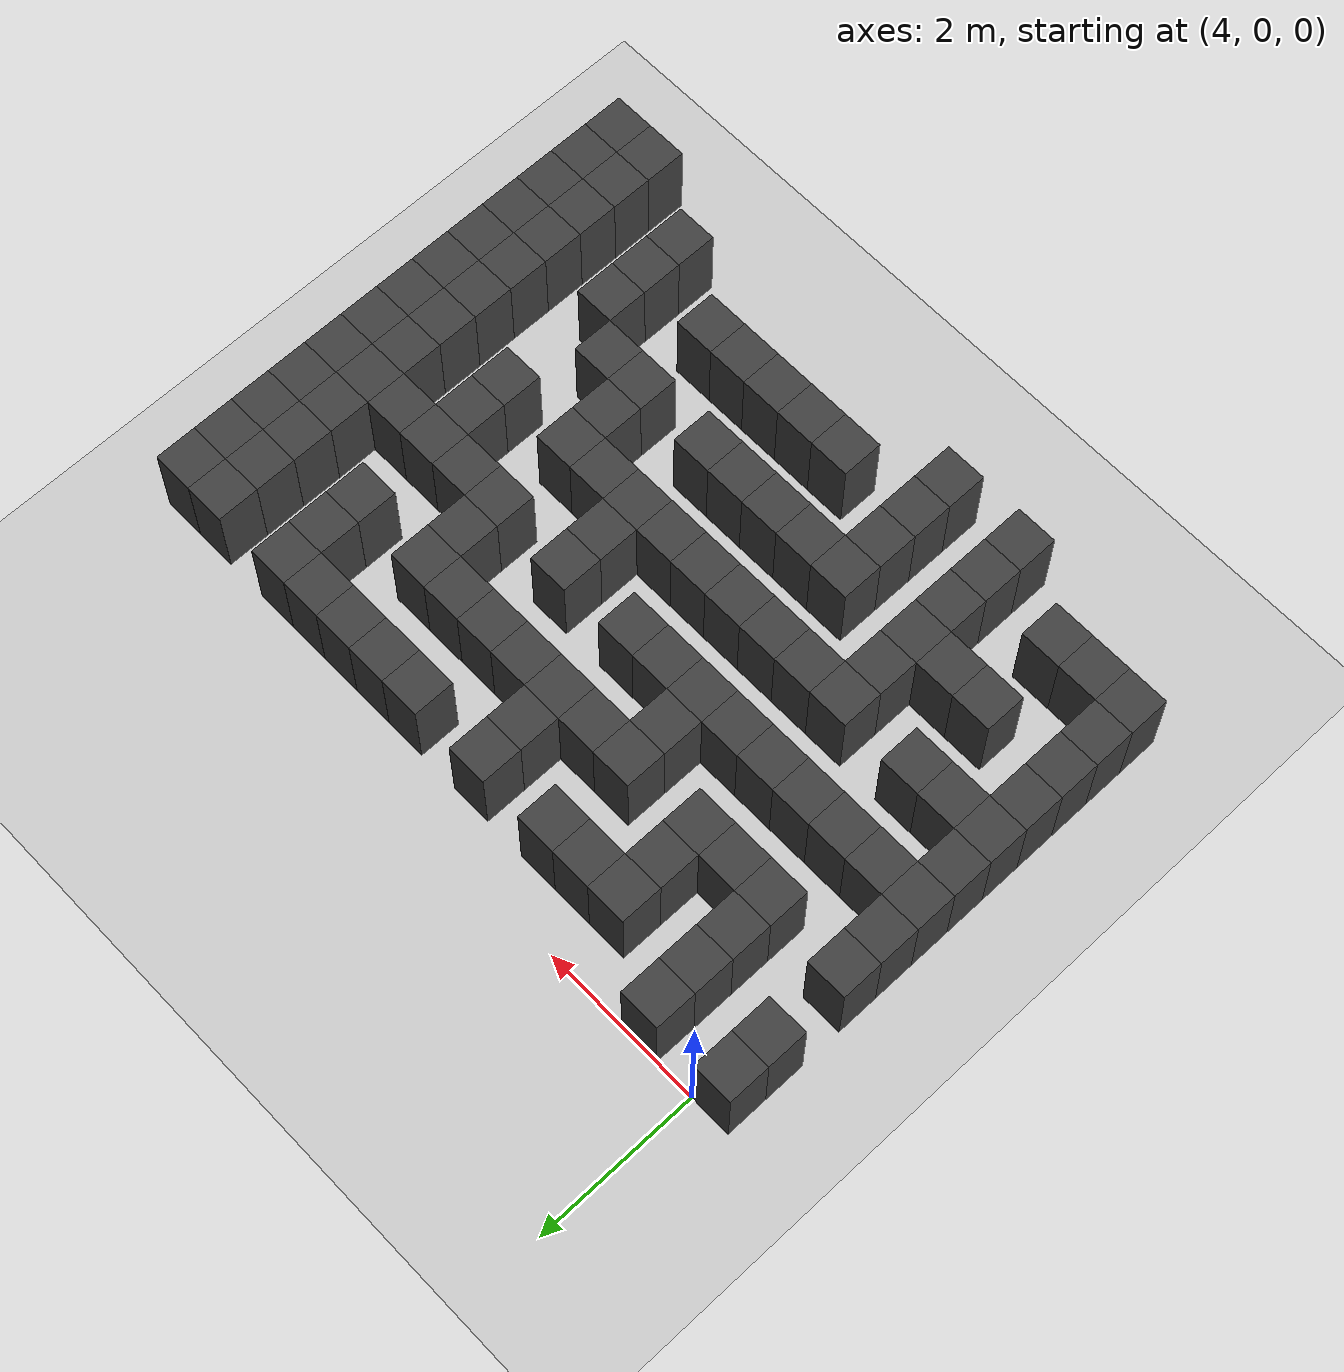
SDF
<sdf version="1.7">
 <world name="map_18914">
  <model name="ground_plane">
   <static>true</static>
   <link name="link">
    <collision name="collision">
     <geometry><plane><normal>0 0 1</normal><size>200 200</size></plane></geometry>
    </collision>
    <visual name="visual">
     <geometry><plane><normal>0 0 1</normal><size>200 200</size></plane></geometry>
     <material><ambient>0.8 0.8 0.8 1</ambient><diffuse>0.8 0.8 0.8 1</diffuse></material>
    </visual>
   </link>
  </model>
  <model name="maze_environment">
   <static>true</static>
   <link name="wall_659">
    <pose>3.750 -0.250 0.500 0 0 0</pose>
    <collision name="col"><geometry><box><size>0.5 0.5 1.0</size></box></geometry></collision>
    <visual name="vis">
     <geometry><box><size>0.5 0.5 1.0</size></box></geometry>
     <material><ambient>0.15 0.15 0.15 1</ambient><diffuse>0.25 0.25 0.25 1</diffuse></material>
    </visual>
   </link>
   <link name="wall_660">
    <pose>4.750 -0.250 0.500 0 0 0</pose>
    <collision name="col"><geometry><box><size>0.5 0.5 1.0</size></box></geometry></collision>
    <visual name="vis">
     <geometry><box><size>0.5 0.5 1.0</size></box></geometry>
     <material><ambient>0.15 0.15 0.15 1</ambient><diffuse>0.25 0.25 0.25 1</diffuse></material>
    </visual>
   </link>
   <link name="wall_690">
    <pose>3.750 -0.750 0.500 0 0 0</pose>
    <collision name="col"><geometry><box><size>0.5 0.5 1.0</size></box></geometry></collision>
    <visual name="vis">
     <geometry><box><size>0.5 0.5 1.0</size></box></geometry>
     <material><ambient>0.15 0.15 0.15 1</ambient><diffuse>0.25 0.25 0.25 1</diffuse></material>
    </visual>
   </link>
   <link name="wall_691">
    <pose>4.750 -0.750 0.500 0 0 0</pose>
    <collision name="col"><geometry><box><size>0.5 0.5 1.0</size></box></geometry></collision>
    <visual name="vis">
     <geometry><box><size>0.5 0.5 1.0</size></box></geometry>
     <material><ambient>0.15 0.15 0.15 1</ambient><diffuse>0.25 0.25 0.25 1</diffuse></material>
    </visual>
   </link>
   <link name="wall_692">
    <pose>5.750 -0.750 0.500 0 0 0</pose>
    <collision name="col"><geometry><box><size>0.5 0.5 1.0</size></box></geometry></collision>
    <visual name="vis">
     <geometry><box><size>0.5 0.5 1.0</size></box></geometry>
     <material><ambient>0.15 0.15 0.15 1</ambient><diffuse>0.25 0.25 0.25 1</diffuse></material>
    </visual>
   </link>
   <link name="wall_693">
    <pose>6.250 -0.750 0.500 0 0 0</pose>
    <collision name="col"><geometry><box><size>0.5 0.5 1.0</size></box></geometry></collision>
    <visual name="vis">
     <geometry><box><size>0.5 0.5 1.0</size></box></geometry>
     <material><ambient>0.15 0.15 0.15 1</ambient><diffuse>0.25 0.25 0.25 1</diffuse></material>
    </visual>
   </link>
   <link name="wall_694">
    <pose>6.750 -0.750 0.500 0 0 0</pose>
    <collision name="col"><geometry><box><size>0.5 0.5 1.0</size></box></geometry></collision>
    <visual name="vis">
     <geometry><box><size>0.5 0.5 1.0</size></box></geometry>
     <material><ambient>0.15 0.15 0.15 1</ambient><diffuse>0.25 0.25 0.25 1</diffuse></material>
    </visual>
   </link>
   <link name="wall_695">
    <pose>7.750 -0.750 0.500 0 0 0</pose>
    <collision name="col"><geometry><box><size>0.5 0.5 1.0</size></box></geometry></collision>
    <visual name="vis">
     <geometry><box><size>0.5 0.5 1.0</size></box></geometry>
     <material><ambient>0.15 0.15 0.15 1</ambient><diffuse>0.25 0.25 0.25 1</diffuse></material>
    </visual>
   </link>
   <link name="wall_696">
    <pose>8.750 -0.750 0.500 0 0 0</pose>
    <collision name="col"><geometry><box><size>0.5 0.5 1.0</size></box></geometry></collision>
    <visual name="vis">
     <geometry><box><size>0.5 0.5 1.0</size></box></geometry>
     <material><ambient>0.15 0.15 0.15 1</ambient><diffuse>0.25 0.25 0.25 1</diffuse></material>
    </visual>
   </link>
   <link name="wall_697">
    <pose>9.250 -0.750 0.500 0 0 0</pose>
    <collision name="col"><geometry><box><size>0.5 0.5 1.0</size></box></geometry></collision>
    <visual name="vis">
     <geometry><box><size>0.5 0.5 1.0</size></box></geometry>
     <material><ambient>0.15 0.15 0.15 1</ambient><diffuse>0.25 0.25 0.25 1</diffuse></material>
    </visual>
   </link>
   <link name="wall_698">
    <pose>9.750 -0.750 0.500 0 0 0</pose>
    <collision name="col"><geometry><box><size>0.5 0.5 1.0</size></box></geometry></collision>
    <visual name="vis">
     <geometry><box><size>0.5 0.5 1.0</size></box></geometry>
     <material><ambient>0.15 0.15 0.15 1</ambient><diffuse>0.25 0.25 0.25 1</diffuse></material>
    </visual>
   </link>
   <link name="wall_699">
    <pose>10.250 -0.750 0.500 0 0 0</pose>
    <collision name="col"><geometry><box><size>0.5 0.5 1.0</size></box></geometry></collision>
    <visual name="vis">
     <geometry><box><size>0.5 0.5 1.0</size></box></geometry>
     <material><ambient>0.15 0.15 0.15 1</ambient><diffuse>0.25 0.25 0.25 1</diffuse></material>
    </visual>
   </link>
   <link name="wall_700">
    <pose>10.750 -0.750 0.500 0 0 0</pose>
    <collision name="col"><geometry><box><size>0.5 0.5 1.0</size></box></geometry></collision>
    <visual name="vis">
     <geometry><box><size>0.5 0.5 1.0</size></box></geometry>
     <material><ambient>0.15 0.15 0.15 1</ambient><diffuse>0.25 0.25 0.25 1</diffuse></material>
    </visual>
   </link>
   <link name="wall_701">
    <pose>11.750 -0.750 0.500 0 0 0</pose>
    <collision name="col"><geometry><box><size>0.5 0.5 1.0</size></box></geometry></collision>
    <visual name="vis">
     <geometry><box><size>0.5 0.5 1.0</size></box></geometry>
     <material><ambient>0.15 0.15 0.15 1</ambient><diffuse>0.25 0.25 0.25 1</diffuse></material>
    </visual>
   </link>
   <link name="wall_702">
    <pose>12.250 -0.750 0.500 0 0 0</pose>
    <collision name="col"><geometry><box><size>0.5 0.5 1.0</size></box></geometry></collision>
    <visual name="vis">
     <geometry><box><size>0.5 0.5 1.0</size></box></geometry>
     <material><ambient>0.15 0.15 0.15 1</ambient><diffuse>0.25 0.25 0.25 1</diffuse></material>
    </visual>
   </link>
   <link name="wall_710">
    <pose>4.750 -1.250 0.500 0 0 0</pose>
    <collision name="col"><geometry><box><size>0.5 0.5 1.0</size></box></geometry></collision>
    <visual name="vis">
     <geometry><box><size>0.5 0.5 1.0</size></box></geometry>
     <material><ambient>0.15 0.15 0.15 1</ambient><diffuse>0.25 0.25 0.25 1</diffuse></material>
    </visual>
   </link>
   <link name="wall_711">
    <pose>5.750 -1.250 0.500 0 0 0</pose>
    <collision name="col"><geometry><box><size>0.5 0.5 1.0</size></box></geometry></collision>
    <visual name="vis">
     <geometry><box><size>0.5 0.5 1.0</size></box></geometry>
     <material><ambient>0.15 0.15 0.15 1</ambient><diffuse>0.25 0.25 0.25 1</diffuse></material>
    </visual>
   </link>
   <link name="wall_712">
    <pose>7.750 -1.250 0.500 0 0 0</pose>
    <collision name="col"><geometry><box><size>0.5 0.5 1.0</size></box></geometry></collision>
    <visual name="vis">
     <geometry><box><size>0.5 0.5 1.0</size></box></geometry>
     <material><ambient>0.15 0.15 0.15 1</ambient><diffuse>0.25 0.25 0.25 1</diffuse></material>
    </visual>
   </link>
   <link name="wall_713">
    <pose>10.750 -1.250 0.500 0 0 0</pose>
    <collision name="col"><geometry><box><size>0.5 0.5 1.0</size></box></geometry></collision>
    <visual name="vis">
     <geometry><box><size>0.5 0.5 1.0</size></box></geometry>
     <material><ambient>0.15 0.15 0.15 1</ambient><diffuse>0.25 0.25 0.25 1</diffuse></material>
    </visual>
   </link>
   <link name="wall_714">
    <pose>11.750 -1.250 0.500 0 0 0</pose>
    <collision name="col"><geometry><box><size>0.5 0.5 1.0</size></box></geometry></collision>
    <visual name="vis">
     <geometry><box><size>0.5 0.5 1.0</size></box></geometry>
     <material><ambient>0.15 0.15 0.15 1</ambient><diffuse>0.25 0.25 0.25 1</diffuse></material>
    </visual>
   </link>
   <link name="wall_715">
    <pose>12.250 -1.250 0.500 0 0 0</pose>
    <collision name="col"><geometry><box><size>0.5 0.5 1.0</size></box></geometry></collision>
    <visual name="vis">
     <geometry><box><size>0.5 0.5 1.0</size></box></geometry>
     <material><ambient>0.15 0.15 0.15 1</ambient><diffuse>0.25 0.25 0.25 1</diffuse></material>
    </visual>
   </link>
   <link name="wall_739">
    <pose>3.750 -1.750 0.500 0 0 0</pose>
    <collision name="col"><geometry><box><size>0.5 0.5 1.0</size></box></geometry></collision>
    <visual name="vis">
     <geometry><box><size>0.5 0.5 1.0</size></box></geometry>
     <material><ambient>0.15 0.15 0.15 1</ambient><diffuse>0.25 0.25 0.25 1</diffuse></material>
    </visual>
   </link>
   <link name="wall_740">
    <pose>4.750 -1.750 0.500 0 0 0</pose>
    <collision name="col"><geometry><box><size>0.5 0.5 1.0</size></box></geometry></collision>
    <visual name="vis">
     <geometry><box><size>0.5 0.5 1.0</size></box></geometry>
     <material><ambient>0.15 0.15 0.15 1</ambient><diffuse>0.25 0.25 0.25 1</diffuse></material>
    </visual>
   </link>
   <link name="wall_741">
    <pose>5.250 -1.750 0.500 0 0 0</pose>
    <collision name="col"><geometry><box><size>0.5 0.5 1.0</size></box></geometry></collision>
    <visual name="vis">
     <geometry><box><size>0.5 0.5 1.0</size></box></geometry>
     <material><ambient>0.15 0.15 0.15 1</ambient><diffuse>0.25 0.25 0.25 1</diffuse></material>
    </visual>
   </link>
   <link name="wall_742">
    <pose>5.750 -1.750 0.500 0 0 0</pose>
    <collision name="col"><geometry><box><size>0.5 0.5 1.0</size></box></geometry></collision>
    <visual name="vis">
     <geometry><box><size>0.5 0.5 1.0</size></box></geometry>
     <material><ambient>0.15 0.15 0.15 1</ambient><diffuse>0.25 0.25 0.25 1</diffuse></material>
    </visual>
   </link>
   <link name="wall_743">
    <pose>6.750 -1.750 0.500 0 0 0</pose>
    <collision name="col"><geometry><box><size>0.5 0.5 1.0</size></box></geometry></collision>
    <visual name="vis">
     <geometry><box><size>0.5 0.5 1.0</size></box></geometry>
     <material><ambient>0.15 0.15 0.15 1</ambient><diffuse>0.25 0.25 0.25 1</diffuse></material>
    </visual>
   </link>
   <link name="wall_744">
    <pose>7.250 -1.750 0.500 0 0 0</pose>
    <collision name="col"><geometry><box><size>0.5 0.5 1.0</size></box></geometry></collision>
    <visual name="vis">
     <geometry><box><size>0.5 0.5 1.0</size></box></geometry>
     <material><ambient>0.15 0.15 0.15 1</ambient><diffuse>0.25 0.25 0.25 1</diffuse></material>
    </visual>
   </link>
   <link name="wall_745">
    <pose>7.750 -1.750 0.500 0 0 0</pose>
    <collision name="col"><geometry><box><size>0.5 0.5 1.0</size></box></geometry></collision>
    <visual name="vis">
     <geometry><box><size>0.5 0.5 1.0</size></box></geometry>
     <material><ambient>0.15 0.15 0.15 1</ambient><diffuse>0.25 0.25 0.25 1</diffuse></material>
    </visual>
   </link>
   <link name="wall_746">
    <pose>8.250 -1.750 0.500 0 0 0</pose>
    <collision name="col"><geometry><box><size>0.5 0.5 1.0</size></box></geometry></collision>
    <visual name="vis">
     <geometry><box><size>0.5 0.5 1.0</size></box></geometry>
     <material><ambient>0.15 0.15 0.15 1</ambient><diffuse>0.25 0.25 0.25 1</diffuse></material>
    </visual>
   </link>
   <link name="wall_747">
    <pose>8.750 -1.750 0.500 0 0 0</pose>
    <collision name="col"><geometry><box><size>0.5 0.5 1.0</size></box></geometry></collision>
    <visual name="vis">
     <geometry><box><size>0.5 0.5 1.0</size></box></geometry>
     <material><ambient>0.15 0.15 0.15 1</ambient><diffuse>0.25 0.25 0.25 1</diffuse></material>
    </visual>
   </link>
   <link name="wall_748">
    <pose>9.250 -1.750 0.500 0 0 0</pose>
    <collision name="col"><geometry><box><size>0.5 0.5 1.0</size></box></geometry></collision>
    <visual name="vis">
     <geometry><box><size>0.5 0.5 1.0</size></box></geometry>
     <material><ambient>0.15 0.15 0.15 1</ambient><diffuse>0.25 0.25 0.25 1</diffuse></material>
    </visual>
   </link>
   <link name="wall_749">
    <pose>9.750 -1.750 0.500 0 0 0</pose>
    <collision name="col"><geometry><box><size>0.5 0.5 1.0</size></box></geometry></collision>
    <visual name="vis">
     <geometry><box><size>0.5 0.5 1.0</size></box></geometry>
     <material><ambient>0.15 0.15 0.15 1</ambient><diffuse>0.25 0.25 0.25 1</diffuse></material>
    </visual>
   </link>
   <link name="wall_750">
    <pose>10.750 -1.750 0.500 0 0 0</pose>
    <collision name="col"><geometry><box><size>0.5 0.5 1.0</size></box></geometry></collision>
    <visual name="vis">
     <geometry><box><size>0.5 0.5 1.0</size></box></geometry>
     <material><ambient>0.15 0.15 0.15 1</ambient><diffuse>0.25 0.25 0.25 1</diffuse></material>
    </visual>
   </link>
   <link name="wall_751">
    <pose>11.750 -1.750 0.500 0 0 0</pose>
    <collision name="col"><geometry><box><size>0.5 0.5 1.0</size></box></geometry></collision>
    <visual name="vis">
     <geometry><box><size>0.5 0.5 1.0</size></box></geometry>
     <material><ambient>0.15 0.15 0.15 1</ambient><diffuse>0.25 0.25 0.25 1</diffuse></material>
    </visual>
   </link>
   <link name="wall_752">
    <pose>12.250 -1.750 0.500 0 0 0</pose>
    <collision name="col"><geometry><box><size>0.5 0.5 1.0</size></box></geometry></collision>
    <visual name="vis">
     <geometry><box><size>0.5 0.5 1.0</size></box></geometry>
     <material><ambient>0.15 0.15 0.15 1</ambient><diffuse>0.25 0.25 0.25 1</diffuse></material>
    </visual>
   </link>
   <link name="wall_762">
    <pose>3.750 -2.250 0.500 0 0 0</pose>
    <collision name="col"><geometry><box><size>0.5 0.5 1.0</size></box></geometry></collision>
    <visual name="vis">
     <geometry><box><size>0.5 0.5 1.0</size></box></geometry>
     <material><ambient>0.15 0.15 0.15 1</ambient><diffuse>0.25 0.25 0.25 1</diffuse></material>
    </visual>
   </link>
   <link name="wall_763">
    <pose>6.750 -2.250 0.500 0 0 0</pose>
    <collision name="col"><geometry><box><size>0.5 0.5 1.0</size></box></geometry></collision>
    <visual name="vis">
     <geometry><box><size>0.5 0.5 1.0</size></box></geometry>
     <material><ambient>0.15 0.15 0.15 1</ambient><diffuse>0.25 0.25 0.25 1</diffuse></material>
    </visual>
   </link>
   <link name="wall_764">
    <pose>9.750 -2.250 0.500 0 0 0</pose>
    <collision name="col"><geometry><box><size>0.5 0.5 1.0</size></box></geometry></collision>
    <visual name="vis">
     <geometry><box><size>0.5 0.5 1.0</size></box></geometry>
     <material><ambient>0.15 0.15 0.15 1</ambient><diffuse>0.25 0.25 0.25 1</diffuse></material>
    </visual>
   </link>
   <link name="wall_765">
    <pose>11.750 -2.250 0.500 0 0 0</pose>
    <collision name="col"><geometry><box><size>0.5 0.5 1.0</size></box></geometry></collision>
    <visual name="vis">
     <geometry><box><size>0.5 0.5 1.0</size></box></geometry>
     <material><ambient>0.15 0.15 0.15 1</ambient><diffuse>0.25 0.25 0.25 1</diffuse></material>
    </visual>
   </link>
   <link name="wall_766">
    <pose>12.250 -2.250 0.500 0 0 0</pose>
    <collision name="col"><geometry><box><size>0.5 0.5 1.0</size></box></geometry></collision>
    <visual name="vis">
     <geometry><box><size>0.5 0.5 1.0</size></box></geometry>
     <material><ambient>0.15 0.15 0.15 1</ambient><diffuse>0.25 0.25 0.25 1</diffuse></material>
    </visual>
   </link>
   <link name="wall_789">
    <pose>3.750 -2.750 0.500 0 0 0</pose>
    <collision name="col"><geometry><box><size>0.5 0.5 1.0</size></box></geometry></collision>
    <visual name="vis">
     <geometry><box><size>0.5 0.5 1.0</size></box></geometry>
     <material><ambient>0.15 0.15 0.15 1</ambient><diffuse>0.25 0.25 0.25 1</diffuse></material>
    </visual>
   </link>
   <link name="wall_790">
    <pose>4.250 -2.750 0.500 0 0 0</pose>
    <collision name="col"><geometry><box><size>0.5 0.5 1.0</size></box></geometry></collision>
    <visual name="vis">
     <geometry><box><size>0.5 0.5 1.0</size></box></geometry>
     <material><ambient>0.15 0.15 0.15 1</ambient><diffuse>0.25 0.25 0.25 1</diffuse></material>
    </visual>
   </link>
   <link name="wall_791">
    <pose>4.750 -2.750 0.500 0 0 0</pose>
    <collision name="col"><geometry><box><size>0.5 0.5 1.0</size></box></geometry></collision>
    <visual name="vis">
     <geometry><box><size>0.5 0.5 1.0</size></box></geometry>
     <material><ambient>0.15 0.15 0.15 1</ambient><diffuse>0.25 0.25 0.25 1</diffuse></material>
    </visual>
   </link>
   <link name="wall_792">
    <pose>5.250 -2.750 0.500 0 0 0</pose>
    <collision name="col"><geometry><box><size>0.5 0.5 1.0</size></box></geometry></collision>
    <visual name="vis">
     <geometry><box><size>0.5 0.5 1.0</size></box></geometry>
     <material><ambient>0.15 0.15 0.15 1</ambient><diffuse>0.25 0.25 0.25 1</diffuse></material>
    </visual>
   </link>
   <link name="wall_793">
    <pose>5.750 -2.750 0.500 0 0 0</pose>
    <collision name="col"><geometry><box><size>0.5 0.5 1.0</size></box></geometry></collision>
    <visual name="vis">
     <geometry><box><size>0.5 0.5 1.0</size></box></geometry>
     <material><ambient>0.15 0.15 0.15 1</ambient><diffuse>0.25 0.25 0.25 1</diffuse></material>
    </visual>
   </link>
   <link name="wall_794">
    <pose>6.250 -2.750 0.500 0 0 0</pose>
    <collision name="col"><geometry><box><size>0.5 0.5 1.0</size></box></geometry></collision>
    <visual name="vis">
     <geometry><box><size>0.5 0.5 1.0</size></box></geometry>
     <material><ambient>0.15 0.15 0.15 1</ambient><diffuse>0.25 0.25 0.25 1</diffuse></material>
    </visual>
   </link>
   <link name="wall_795">
    <pose>6.750 -2.750 0.500 0 0 0</pose>
    <collision name="col"><geometry><box><size>0.5 0.5 1.0</size></box></geometry></collision>
    <visual name="vis">
     <geometry><box><size>0.5 0.5 1.0</size></box></geometry>
     <material><ambient>0.15 0.15 0.15 1</ambient><diffuse>0.25 0.25 0.25 1</diffuse></material>
    </visual>
   </link>
   <link name="wall_796">
    <pose>7.250 -2.750 0.500 0 0 0</pose>
    <collision name="col"><geometry><box><size>0.5 0.5 1.0</size></box></geometry></collision>
    <visual name="vis">
     <geometry><box><size>0.5 0.5 1.0</size></box></geometry>
     <material><ambient>0.15 0.15 0.15 1</ambient><diffuse>0.25 0.25 0.25 1</diffuse></material>
    </visual>
   </link>
   <link name="wall_797">
    <pose>7.750 -2.750 0.500 0 0 0</pose>
    <collision name="col"><geometry><box><size>0.5 0.5 1.0</size></box></geometry></collision>
    <visual name="vis">
     <geometry><box><size>0.5 0.5 1.0</size></box></geometry>
     <material><ambient>0.15 0.15 0.15 1</ambient><diffuse>0.25 0.25 0.25 1</diffuse></material>
    </visual>
   </link>
   <link name="wall_798">
    <pose>8.750 -2.750 0.500 0 0 0</pose>
    <collision name="col"><geometry><box><size>0.5 0.5 1.0</size></box></geometry></collision>
    <visual name="vis">
     <geometry><box><size>0.5 0.5 1.0</size></box></geometry>
     <material><ambient>0.15 0.15 0.15 1</ambient><diffuse>0.25 0.25 0.25 1</diffuse></material>
    </visual>
   </link>
   <link name="wall_799">
    <pose>9.750 -2.750 0.500 0 0 0</pose>
    <collision name="col"><geometry><box><size>0.5 0.5 1.0</size></box></geometry></collision>
    <visual name="vis">
     <geometry><box><size>0.5 0.5 1.0</size></box></geometry>
     <material><ambient>0.15 0.15 0.15 1</ambient><diffuse>0.25 0.25 0.25 1</diffuse></material>
    </visual>
   </link>
   <link name="wall_800">
    <pose>10.250 -2.750 0.500 0 0 0</pose>
    <collision name="col"><geometry><box><size>0.5 0.5 1.0</size></box></geometry></collision>
    <visual name="vis">
     <geometry><box><size>0.5 0.5 1.0</size></box></geometry>
     <material><ambient>0.15 0.15 0.15 1</ambient><diffuse>0.25 0.25 0.25 1</diffuse></material>
    </visual>
   </link>
   <link name="wall_801">
    <pose>10.750 -2.750 0.500 0 0 0</pose>
    <collision name="col"><geometry><box><size>0.5 0.5 1.0</size></box></geometry></collision>
    <visual name="vis">
     <geometry><box><size>0.5 0.5 1.0</size></box></geometry>
     <material><ambient>0.15 0.15 0.15 1</ambient><diffuse>0.25 0.25 0.25 1</diffuse></material>
    </visual>
   </link>
   <link name="wall_802">
    <pose>11.250 -2.750 0.500 0 0 0</pose>
    <collision name="col"><geometry><box><size>0.5 0.5 1.0</size></box></geometry></collision>
    <visual name="vis">
     <geometry><box><size>0.5 0.5 1.0</size></box></geometry>
     <material><ambient>0.15 0.15 0.15 1</ambient><diffuse>0.25 0.25 0.25 1</diffuse></material>
    </visual>
   </link>
   <link name="wall_803">
    <pose>11.750 -2.750 0.500 0 0 0</pose>
    <collision name="col"><geometry><box><size>0.5 0.5 1.0</size></box></geometry></collision>
    <visual name="vis">
     <geometry><box><size>0.5 0.5 1.0</size></box></geometry>
     <material><ambient>0.15 0.15 0.15 1</ambient><diffuse>0.25 0.25 0.25 1</diffuse></material>
    </visual>
   </link>
   <link name="wall_804">
    <pose>12.250 -2.750 0.500 0 0 0</pose>
    <collision name="col"><geometry><box><size>0.5 0.5 1.0</size></box></geometry></collision>
    <visual name="vis">
     <geometry><box><size>0.5 0.5 1.0</size></box></geometry>
     <material><ambient>0.15 0.15 0.15 1</ambient><diffuse>0.25 0.25 0.25 1</diffuse></material>
    </visual>
   </link>
   <link name="wall_814">
    <pose>3.750 -3.250 0.500 0 0 0</pose>
    <collision name="col"><geometry><box><size>0.5 0.5 1.0</size></box></geometry></collision>
    <visual name="vis">
     <geometry><box><size>0.5 0.5 1.0</size></box></geometry>
     <material><ambient>0.15 0.15 0.15 1</ambient><diffuse>0.25 0.25 0.25 1</diffuse></material>
    </visual>
   </link>
   <link name="wall_815">
    <pose>8.750 -3.250 0.500 0 0 0</pose>
    <collision name="col"><geometry><box><size>0.5 0.5 1.0</size></box></geometry></collision>
    <visual name="vis">
     <geometry><box><size>0.5 0.5 1.0</size></box></geometry>
     <material><ambient>0.15 0.15 0.15 1</ambient><diffuse>0.25 0.25 0.25 1</diffuse></material>
    </visual>
   </link>
   <link name="wall_816">
    <pose>10.750 -3.250 0.500 0 0 0</pose>
    <collision name="col"><geometry><box><size>0.5 0.5 1.0</size></box></geometry></collision>
    <visual name="vis">
     <geometry><box><size>0.5 0.5 1.0</size></box></geometry>
     <material><ambient>0.15 0.15 0.15 1</ambient><diffuse>0.25 0.25 0.25 1</diffuse></material>
    </visual>
   </link>
   <link name="wall_817">
    <pose>11.750 -3.250 0.500 0 0 0</pose>
    <collision name="col"><geometry><box><size>0.5 0.5 1.0</size></box></geometry></collision>
    <visual name="vis">
     <geometry><box><size>0.5 0.5 1.0</size></box></geometry>
     <material><ambient>0.15 0.15 0.15 1</ambient><diffuse>0.25 0.25 0.25 1</diffuse></material>
    </visual>
   </link>
   <link name="wall_818">
    <pose>12.250 -3.250 0.500 0 0 0</pose>
    <collision name="col"><geometry><box><size>0.5 0.5 1.0</size></box></geometry></collision>
    <visual name="vis">
     <geometry><box><size>0.5 0.5 1.0</size></box></geometry>
     <material><ambient>0.15 0.15 0.15 1</ambient><diffuse>0.25 0.25 0.25 1</diffuse></material>
    </visual>
   </link>
   <link name="wall_841">
    <pose>3.750 -3.750 0.500 0 0 0</pose>
    <collision name="col"><geometry><box><size>0.5 0.5 1.0</size></box></geometry></collision>
    <visual name="vis">
     <geometry><box><size>0.5 0.5 1.0</size></box></geometry>
     <material><ambient>0.15 0.15 0.15 1</ambient><diffuse>0.25 0.25 0.25 1</diffuse></material>
    </visual>
   </link>
   <link name="wall_842">
    <pose>4.250 -3.750 0.500 0 0 0</pose>
    <collision name="col"><geometry><box><size>0.5 0.5 1.0</size></box></geometry></collision>
    <visual name="vis">
     <geometry><box><size>0.5 0.5 1.0</size></box></geometry>
     <material><ambient>0.15 0.15 0.15 1</ambient><diffuse>0.25 0.25 0.25 1</diffuse></material>
    </visual>
   </link>
   <link name="wall_843">
    <pose>4.750 -3.750 0.500 0 0 0</pose>
    <collision name="col"><geometry><box><size>0.5 0.5 1.0</size></box></geometry></collision>
    <visual name="vis">
     <geometry><box><size>0.5 0.5 1.0</size></box></geometry>
     <material><ambient>0.15 0.15 0.15 1</ambient><diffuse>0.25 0.25 0.25 1</diffuse></material>
    </visual>
   </link>
   <link name="wall_844">
    <pose>5.750 -3.750 0.500 0 0 0</pose>
    <collision name="col"><geometry><box><size>0.5 0.5 1.0</size></box></geometry></collision>
    <visual name="vis">
     <geometry><box><size>0.5 0.5 1.0</size></box></geometry>
     <material><ambient>0.15 0.15 0.15 1</ambient><diffuse>0.25 0.25 0.25 1</diffuse></material>
    </visual>
   </link>
   <link name="wall_845">
    <pose>6.250 -3.750 0.500 0 0 0</pose>
    <collision name="col"><geometry><box><size>0.5 0.5 1.0</size></box></geometry></collision>
    <visual name="vis">
     <geometry><box><size>0.5 0.5 1.0</size></box></geometry>
     <material><ambient>0.15 0.15 0.15 1</ambient><diffuse>0.25 0.25 0.25 1</diffuse></material>
    </visual>
   </link>
   <link name="wall_846">
    <pose>6.750 -3.750 0.500 0 0 0</pose>
    <collision name="col"><geometry><box><size>0.5 0.5 1.0</size></box></geometry></collision>
    <visual name="vis">
     <geometry><box><size>0.5 0.5 1.0</size></box></geometry>
     <material><ambient>0.15 0.15 0.15 1</ambient><diffuse>0.25 0.25 0.25 1</diffuse></material>
    </visual>
   </link>
   <link name="wall_847">
    <pose>7.250 -3.750 0.500 0 0 0</pose>
    <collision name="col"><geometry><box><size>0.5 0.5 1.0</size></box></geometry></collision>
    <visual name="vis">
     <geometry><box><size>0.5 0.5 1.0</size></box></geometry>
     <material><ambient>0.15 0.15 0.15 1</ambient><diffuse>0.25 0.25 0.25 1</diffuse></material>
    </visual>
   </link>
   <link name="wall_848">
    <pose>7.750 -3.750 0.500 0 0 0</pose>
    <collision name="col"><geometry><box><size>0.5 0.5 1.0</size></box></geometry></collision>
    <visual name="vis">
     <geometry><box><size>0.5 0.5 1.0</size></box></geometry>
     <material><ambient>0.15 0.15 0.15 1</ambient><diffuse>0.25 0.25 0.25 1</diffuse></material>
    </visual>
   </link>
   <link name="wall_849">
    <pose>8.250 -3.750 0.500 0 0 0</pose>
    <collision name="col"><geometry><box><size>0.5 0.5 1.0</size></box></geometry></collision>
    <visual name="vis">
     <geometry><box><size>0.5 0.5 1.0</size></box></geometry>
     <material><ambient>0.15 0.15 0.15 1</ambient><diffuse>0.25 0.25 0.25 1</diffuse></material>
    </visual>
   </link>
   <link name="wall_850">
    <pose>8.750 -3.750 0.500 0 0 0</pose>
    <collision name="col"><geometry><box><size>0.5 0.5 1.0</size></box></geometry></collision>
    <visual name="vis">
     <geometry><box><size>0.5 0.5 1.0</size></box></geometry>
     <material><ambient>0.15 0.15 0.15 1</ambient><diffuse>0.25 0.25 0.25 1</diffuse></material>
    </visual>
   </link>
   <link name="wall_851">
    <pose>9.250 -3.750 0.500 0 0 0</pose>
    <collision name="col"><geometry><box><size>0.5 0.5 1.0</size></box></geometry></collision>
    <visual name="vis">
     <geometry><box><size>0.5 0.5 1.0</size></box></geometry>
     <material><ambient>0.15 0.15 0.15 1</ambient><diffuse>0.25 0.25 0.25 1</diffuse></material>
    </visual>
   </link>
   <link name="wall_852">
    <pose>9.750 -3.750 0.500 0 0 0</pose>
    <collision name="col"><geometry><box><size>0.5 0.5 1.0</size></box></geometry></collision>
    <visual name="vis">
     <geometry><box><size>0.5 0.5 1.0</size></box></geometry>
     <material><ambient>0.15 0.15 0.15 1</ambient><diffuse>0.25 0.25 0.25 1</diffuse></material>
    </visual>
   </link>
   <link name="wall_853">
    <pose>10.750 -3.750 0.500 0 0 0</pose>
    <collision name="col"><geometry><box><size>0.5 0.5 1.0</size></box></geometry></collision>
    <visual name="vis">
     <geometry><box><size>0.5 0.5 1.0</size></box></geometry>
     <material><ambient>0.15 0.15 0.15 1</ambient><diffuse>0.25 0.25 0.25 1</diffuse></material>
    </visual>
   </link>
   <link name="wall_854">
    <pose>11.750 -3.750 0.500 0 0 0</pose>
    <collision name="col"><geometry><box><size>0.5 0.5 1.0</size></box></geometry></collision>
    <visual name="vis">
     <geometry><box><size>0.5 0.5 1.0</size></box></geometry>
     <material><ambient>0.15 0.15 0.15 1</ambient><diffuse>0.25 0.25 0.25 1</diffuse></material>
    </visual>
   </link>
   <link name="wall_855">
    <pose>12.250 -3.750 0.500 0 0 0</pose>
    <collision name="col"><geometry><box><size>0.5 0.5 1.0</size></box></geometry></collision>
    <visual name="vis">
     <geometry><box><size>0.5 0.5 1.0</size></box></geometry>
     <material><ambient>0.15 0.15 0.15 1</ambient><diffuse>0.25 0.25 0.25 1</diffuse></material>
    </visual>
   </link>
   <link name="wall_865">
    <pose>3.750 -4.250 0.500 0 0 0</pose>
    <collision name="col"><geometry><box><size>0.5 0.5 1.0</size></box></geometry></collision>
    <visual name="vis">
     <geometry><box><size>0.5 0.5 1.0</size></box></geometry>
     <material><ambient>0.15 0.15 0.15 1</ambient><diffuse>0.25 0.25 0.25 1</diffuse></material>
    </visual>
   </link>
   <link name="wall_866">
    <pose>5.750 -4.250 0.500 0 0 0</pose>
    <collision name="col"><geometry><box><size>0.5 0.5 1.0</size></box></geometry></collision>
    <visual name="vis">
     <geometry><box><size>0.5 0.5 1.0</size></box></geometry>
     <material><ambient>0.15 0.15 0.15 1</ambient><diffuse>0.25 0.25 0.25 1</diffuse></material>
    </visual>
   </link>
   <link name="wall_867">
    <pose>9.750 -4.250 0.500 0 0 0</pose>
    <collision name="col"><geometry><box><size>0.5 0.5 1.0</size></box></geometry></collision>
    <visual name="vis">
     <geometry><box><size>0.5 0.5 1.0</size></box></geometry>
     <material><ambient>0.15 0.15 0.15 1</ambient><diffuse>0.25 0.25 0.25 1</diffuse></material>
    </visual>
   </link>
   <link name="wall_868">
    <pose>11.750 -4.250 0.500 0 0 0</pose>
    <collision name="col"><geometry><box><size>0.5 0.5 1.0</size></box></geometry></collision>
    <visual name="vis">
     <geometry><box><size>0.5 0.5 1.0</size></box></geometry>
     <material><ambient>0.15 0.15 0.15 1</ambient><diffuse>0.25 0.25 0.25 1</diffuse></material>
    </visual>
   </link>
   <link name="wall_869">
    <pose>12.250 -4.250 0.500 0 0 0</pose>
    <collision name="col"><geometry><box><size>0.5 0.5 1.0</size></box></geometry></collision>
    <visual name="vis">
     <geometry><box><size>0.5 0.5 1.0</size></box></geometry>
     <material><ambient>0.15 0.15 0.15 1</ambient><diffuse>0.25 0.25 0.25 1</diffuse></material>
    </visual>
   </link>
   <link name="wall_890">
    <pose>3.750 -4.750 0.500 0 0 0</pose>
    <collision name="col"><geometry><box><size>0.5 0.5 1.0</size></box></geometry></collision>
    <visual name="vis">
     <geometry><box><size>0.5 0.5 1.0</size></box></geometry>
     <material><ambient>0.15 0.15 0.15 1</ambient><diffuse>0.25 0.25 0.25 1</diffuse></material>
    </visual>
   </link>
   <link name="wall_891">
    <pose>4.750 -4.750 0.500 0 0 0</pose>
    <collision name="col"><geometry><box><size>0.5 0.5 1.0</size></box></geometry></collision>
    <visual name="vis">
     <geometry><box><size>0.5 0.5 1.0</size></box></geometry>
     <material><ambient>0.15 0.15 0.15 1</ambient><diffuse>0.25 0.25 0.25 1</diffuse></material>
    </visual>
   </link>
   <link name="wall_892">
    <pose>5.250 -4.750 0.500 0 0 0</pose>
    <collision name="col"><geometry><box><size>0.5 0.5 1.0</size></box></geometry></collision>
    <visual name="vis">
     <geometry><box><size>0.5 0.5 1.0</size></box></geometry>
     <material><ambient>0.15 0.15 0.15 1</ambient><diffuse>0.25 0.25 0.25 1</diffuse></material>
    </visual>
   </link>
   <link name="wall_893">
    <pose>5.750 -4.750 0.500 0 0 0</pose>
    <collision name="col"><geometry><box><size>0.5 0.5 1.0</size></box></geometry></collision>
    <visual name="vis">
     <geometry><box><size>0.5 0.5 1.0</size></box></geometry>
     <material><ambient>0.15 0.15 0.15 1</ambient><diffuse>0.25 0.25 0.25 1</diffuse></material>
    </visual>
   </link>
   <link name="wall_894">
    <pose>6.750 -4.750 0.500 0 0 0</pose>
    <collision name="col"><geometry><box><size>0.5 0.5 1.0</size></box></geometry></collision>
    <visual name="vis">
     <geometry><box><size>0.5 0.5 1.0</size></box></geometry>
     <material><ambient>0.15 0.15 0.15 1</ambient><diffuse>0.25 0.25 0.25 1</diffuse></material>
    </visual>
   </link>
   <link name="wall_895">
    <pose>7.250 -4.750 0.500 0 0 0</pose>
    <collision name="col"><geometry><box><size>0.5 0.5 1.0</size></box></geometry></collision>
    <visual name="vis">
     <geometry><box><size>0.5 0.5 1.0</size></box></geometry>
     <material><ambient>0.15 0.15 0.15 1</ambient><diffuse>0.25 0.25 0.25 1</diffuse></material>
    </visual>
   </link>
   <link name="wall_896">
    <pose>7.750 -4.750 0.500 0 0 0</pose>
    <collision name="col"><geometry><box><size>0.5 0.5 1.0</size></box></geometry></collision>
    <visual name="vis">
     <geometry><box><size>0.5 0.5 1.0</size></box></geometry>
     <material><ambient>0.15 0.15 0.15 1</ambient><diffuse>0.25 0.25 0.25 1</diffuse></material>
    </visual>
   </link>
   <link name="wall_897">
    <pose>8.250 -4.750 0.500 0 0 0</pose>
    <collision name="col"><geometry><box><size>0.5 0.5 1.0</size></box></geometry></collision>
    <visual name="vis">
     <geometry><box><size>0.5 0.5 1.0</size></box></geometry>
     <material><ambient>0.15 0.15 0.15 1</ambient><diffuse>0.25 0.25 0.25 1</diffuse></material>
    </visual>
   </link>
   <link name="wall_898">
    <pose>8.750 -4.750 0.500 0 0 0</pose>
    <collision name="col"><geometry><box><size>0.5 0.5 1.0</size></box></geometry></collision>
    <visual name="vis">
     <geometry><box><size>0.5 0.5 1.0</size></box></geometry>
     <material><ambient>0.15 0.15 0.15 1</ambient><diffuse>0.25 0.25 0.25 1</diffuse></material>
    </visual>
   </link>
   <link name="wall_899">
    <pose>9.750 -4.750 0.500 0 0 0</pose>
    <collision name="col"><geometry><box><size>0.5 0.5 1.0</size></box></geometry></collision>
    <visual name="vis">
     <geometry><box><size>0.5 0.5 1.0</size></box></geometry>
     <material><ambient>0.15 0.15 0.15 1</ambient><diffuse>0.25 0.25 0.25 1</diffuse></material>
    </visual>
   </link>
   <link name="wall_900">
    <pose>10.250 -4.750 0.500 0 0 0</pose>
    <collision name="col"><geometry><box><size>0.5 0.5 1.0</size></box></geometry></collision>
    <visual name="vis">
     <geometry><box><size>0.5 0.5 1.0</size></box></geometry>
     <material><ambient>0.15 0.15 0.15 1</ambient><diffuse>0.25 0.25 0.25 1</diffuse></material>
    </visual>
   </link>
   <link name="wall_901">
    <pose>11.750 -4.750 0.500 0 0 0</pose>
    <collision name="col"><geometry><box><size>0.5 0.5 1.0</size></box></geometry></collision>
    <visual name="vis">
     <geometry><box><size>0.5 0.5 1.0</size></box></geometry>
     <material><ambient>0.15 0.15 0.15 1</ambient><diffuse>0.25 0.25 0.25 1</diffuse></material>
    </visual>
   </link>
   <link name="wall_902">
    <pose>12.250 -4.750 0.500 0 0 0</pose>
    <collision name="col"><geometry><box><size>0.5 0.5 1.0</size></box></geometry></collision>
    <visual name="vis">
     <geometry><box><size>0.5 0.5 1.0</size></box></geometry>
     <material><ambient>0.15 0.15 0.15 1</ambient><diffuse>0.25 0.25 0.25 1</diffuse></material>
    </visual>
   </link>
   <link name="wall_913">
    <pose>3.750 -5.250 0.500 0 0 0</pose>
    <collision name="col"><geometry><box><size>0.5 0.5 1.0</size></box></geometry></collision>
    <visual name="vis">
     <geometry><box><size>0.5 0.5 1.0</size></box></geometry>
     <material><ambient>0.15 0.15 0.15 1</ambient><diffuse>0.25 0.25 0.25 1</diffuse></material>
    </visual>
   </link>
   <link name="wall_914">
    <pose>5.750 -5.250 0.500 0 0 0</pose>
    <collision name="col"><geometry><box><size>0.5 0.5 1.0</size></box></geometry></collision>
    <visual name="vis">
     <geometry><box><size>0.5 0.5 1.0</size></box></geometry>
     <material><ambient>0.15 0.15 0.15 1</ambient><diffuse>0.25 0.25 0.25 1</diffuse></material>
    </visual>
   </link>
   <link name="wall_915">
    <pose>6.750 -5.250 0.500 0 0 0</pose>
    <collision name="col"><geometry><box><size>0.5 0.5 1.0</size></box></geometry></collision>
    <visual name="vis">
     <geometry><box><size>0.5 0.5 1.0</size></box></geometry>
     <material><ambient>0.15 0.15 0.15 1</ambient><diffuse>0.25 0.25 0.25 1</diffuse></material>
    </visual>
   </link>
   <link name="wall_916">
    <pose>10.750 -5.250 0.500 0 0 0</pose>
    <collision name="col"><geometry><box><size>0.5 0.5 1.0</size></box></geometry></collision>
    <visual name="vis">
     <geometry><box><size>0.5 0.5 1.0</size></box></geometry>
     <material><ambient>0.15 0.15 0.15 1</ambient><diffuse>0.25 0.25 0.25 1</diffuse></material>
    </visual>
   </link>
   <link name="wall_917">
    <pose>11.750 -5.250 0.500 0 0 0</pose>
    <collision name="col"><geometry><box><size>0.5 0.5 1.0</size></box></geometry></collision>
    <visual name="vis">
     <geometry><box><size>0.5 0.5 1.0</size></box></geometry>
     <material><ambient>0.15 0.15 0.15 1</ambient><diffuse>0.25 0.25 0.25 1</diffuse></material>
    </visual>
   </link>
   <link name="wall_918">
    <pose>12.250 -5.250 0.500 0 0 0</pose>
    <collision name="col"><geometry><box><size>0.5 0.5 1.0</size></box></geometry></collision>
    <visual name="vis">
     <geometry><box><size>0.5 0.5 1.0</size></box></geometry>
     <material><ambient>0.15 0.15 0.15 1</ambient><diffuse>0.25 0.25 0.25 1</diffuse></material>
    </visual>
   </link>
   <link name="wall_939">
    <pose>3.750 -5.750 0.500 0 0 0</pose>
    <collision name="col"><geometry><box><size>0.5 0.5 1.0</size></box></geometry></collision>
    <visual name="vis">
     <geometry><box><size>0.5 0.5 1.0</size></box></geometry>
     <material><ambient>0.15 0.15 0.15 1</ambient><diffuse>0.25 0.25 0.25 1</diffuse></material>
    </visual>
   </link>
   <link name="wall_940">
    <pose>4.250 -5.750 0.500 0 0 0</pose>
    <collision name="col"><geometry><box><size>0.5 0.5 1.0</size></box></geometry></collision>
    <visual name="vis">
     <geometry><box><size>0.5 0.5 1.0</size></box></geometry>
     <material><ambient>0.15 0.15 0.15 1</ambient><diffuse>0.25 0.25 0.25 1</diffuse></material>
    </visual>
   </link>
   <link name="wall_941">
    <pose>4.750 -5.750 0.500 0 0 0</pose>
    <collision name="col"><geometry><box><size>0.5 0.5 1.0</size></box></geometry></collision>
    <visual name="vis">
     <geometry><box><size>0.5 0.5 1.0</size></box></geometry>
     <material><ambient>0.15 0.15 0.15 1</ambient><diffuse>0.25 0.25 0.25 1</diffuse></material>
    </visual>
   </link>
   <link name="wall_942">
    <pose>5.750 -5.750 0.500 0 0 0</pose>
    <collision name="col"><geometry><box><size>0.5 0.5 1.0</size></box></geometry></collision>
    <visual name="vis">
     <geometry><box><size>0.5 0.5 1.0</size></box></geometry>
     <material><ambient>0.15 0.15 0.15 1</ambient><diffuse>0.25 0.25 0.25 1</diffuse></material>
    </visual>
   </link>
   <link name="wall_943">
    <pose>6.750 -5.750 0.500 0 0 0</pose>
    <collision name="col"><geometry><box><size>0.5 0.5 1.0</size></box></geometry></collision>
    <visual name="vis">
     <geometry><box><size>0.5 0.5 1.0</size></box></geometry>
     <material><ambient>0.15 0.15 0.15 1</ambient><diffuse>0.25 0.25 0.25 1</diffuse></material>
    </visual>
   </link>
   <link name="wall_944">
    <pose>7.750 -5.750 0.500 0 0 0</pose>
    <collision name="col"><geometry><box><size>0.5 0.5 1.0</size></box></geometry></collision>
    <visual name="vis">
     <geometry><box><size>0.5 0.5 1.0</size></box></geometry>
     <material><ambient>0.15 0.15 0.15 1</ambient><diffuse>0.25 0.25 0.25 1</diffuse></material>
    </visual>
   </link>
   <link name="wall_945">
    <pose>8.250 -5.750 0.500 0 0 0</pose>
    <collision name="col"><geometry><box><size>0.5 0.5 1.0</size></box></geometry></collision>
    <visual name="vis">
     <geometry><box><size>0.5 0.5 1.0</size></box></geometry>
     <material><ambient>0.15 0.15 0.15 1</ambient><diffuse>0.25 0.25 0.25 1</diffuse></material>
    </visual>
   </link>
   <link name="wall_946">
    <pose>8.750 -5.750 0.500 0 0 0</pose>
    <collision name="col"><geometry><box><size>0.5 0.5 1.0</size></box></geometry></collision>
    <visual name="vis">
     <geometry><box><size>0.5 0.5 1.0</size></box></geometry>
     <material><ambient>0.15 0.15 0.15 1</ambient><diffuse>0.25 0.25 0.25 1</diffuse></material>
    </visual>
   </link>
   <link name="wall_947">
    <pose>9.250 -5.750 0.500 0 0 0</pose>
    <collision name="col"><geometry><box><size>0.5 0.5 1.0</size></box></geometry></collision>
    <visual name="vis">
     <geometry><box><size>0.5 0.5 1.0</size></box></geometry>
     <material><ambient>0.15 0.15 0.15 1</ambient><diffuse>0.25 0.25 0.25 1</diffuse></material>
    </visual>
   </link>
   <link name="wall_948">
    <pose>9.750 -5.750 0.500 0 0 0</pose>
    <collision name="col"><geometry><box><size>0.5 0.5 1.0</size></box></geometry></collision>
    <visual name="vis">
     <geometry><box><size>0.5 0.5 1.0</size></box></geometry>
     <material><ambient>0.15 0.15 0.15 1</ambient><diffuse>0.25 0.25 0.25 1</diffuse></material>
    </visual>
   </link>
   <link name="wall_949">
    <pose>10.750 -5.750 0.500 0 0 0</pose>
    <collision name="col"><geometry><box><size>0.5 0.5 1.0</size></box></geometry></collision>
    <visual name="vis">
     <geometry><box><size>0.5 0.5 1.0</size></box></geometry>
     <material><ambient>0.15 0.15 0.15 1</ambient><diffuse>0.25 0.25 0.25 1</diffuse></material>
    </visual>
   </link>
   <link name="wall_950">
    <pose>11.750 -5.750 0.500 0 0 0</pose>
    <collision name="col"><geometry><box><size>0.5 0.5 1.0</size></box></geometry></collision>
    <visual name="vis">
     <geometry><box><size>0.5 0.5 1.0</size></box></geometry>
     <material><ambient>0.15 0.15 0.15 1</ambient><diffuse>0.25 0.25 0.25 1</diffuse></material>
    </visual>
   </link>
   <link name="wall_951">
    <pose>12.250 -5.750 0.500 0 0 0</pose>
    <collision name="col"><geometry><box><size>0.5 0.5 1.0</size></box></geometry></collision>
    <visual name="vis">
     <geometry><box><size>0.5 0.5 1.0</size></box></geometry>
     <material><ambient>0.15 0.15 0.15 1</ambient><diffuse>0.25 0.25 0.25 1</diffuse></material>
    </visual>
   </link>
   <link name="wall_960">
    <pose>5.750 -6.250 0.500 0 0 0</pose>
    <collision name="col"><geometry><box><size>0.5 0.5 1.0</size></box></geometry></collision>
    <visual name="vis">
     <geometry><box><size>0.5 0.5 1.0</size></box></geometry>
     <material><ambient>0.15 0.15 0.15 1</ambient><diffuse>0.25 0.25 0.25 1</diffuse></material>
    </visual>
   </link>
   <link name="wall_961">
    <pose>6.750 -6.250 0.500 0 0 0</pose>
    <collision name="col"><geometry><box><size>0.5 0.5 1.0</size></box></geometry></collision>
    <visual name="vis">
     <geometry><box><size>0.5 0.5 1.0</size></box></geometry>
     <material><ambient>0.15 0.15 0.15 1</ambient><diffuse>0.25 0.25 0.25 1</diffuse></material>
    </visual>
   </link>
   <link name="wall_962">
    <pose>10.750 -6.250 0.500 0 0 0</pose>
    <collision name="col"><geometry><box><size>0.5 0.5 1.0</size></box></geometry></collision>
    <visual name="vis">
     <geometry><box><size>0.5 0.5 1.0</size></box></geometry>
     <material><ambient>0.15 0.15 0.15 1</ambient><diffuse>0.25 0.25 0.25 1</diffuse></material>
    </visual>
   </link>
   <link name="wall_963">
    <pose>11.750 -6.250 0.500 0 0 0</pose>
    <collision name="col"><geometry><box><size>0.5 0.5 1.0</size></box></geometry></collision>
    <visual name="vis">
     <geometry><box><size>0.5 0.5 1.0</size></box></geometry>
     <material><ambient>0.15 0.15 0.15 1</ambient><diffuse>0.25 0.25 0.25 1</diffuse></material>
    </visual>
   </link>
   <link name="wall_964">
    <pose>12.250 -6.250 0.500 0 0 0</pose>
    <collision name="col"><geometry><box><size>0.5 0.5 1.0</size></box></geometry></collision>
    <visual name="vis">
     <geometry><box><size>0.5 0.5 1.0</size></box></geometry>
     <material><ambient>0.15 0.15 0.15 1</ambient><diffuse>0.25 0.25 0.25 1</diffuse></material>
    </visual>
   </link>
   <link name="wall_1002">
    <pose>11.750 -6.750 0.500 0 0 0</pose>
    <collision name="col"><geometry><box><size>0.5 0.5 1.0</size></box></geometry></collision>
    <visual name="vis">
     <geometry><box><size>0.5 0.5 1.0</size></box></geometry>
     <material><ambient>0.15 0.15 0.15 1</ambient><diffuse>0.25 0.25 0.25 1</diffuse></material>
    </visual>
   </link>
   <link name="wall_1003">
    <pose>12.250 -6.750 0.500 0 0 0</pose>
    <collision name="col"><geometry><box><size>0.5 0.5 1.0</size></box></geometry></collision>
    <visual name="vis">
     <geometry><box><size>0.5 0.5 1.0</size></box></geometry>
     <material><ambient>0.15 0.15 0.15 1</ambient><diffuse>0.25 0.25 0.25 1</diffuse></material>
    </visual>
   </link>
  </model>
 </world>
</sdf>
